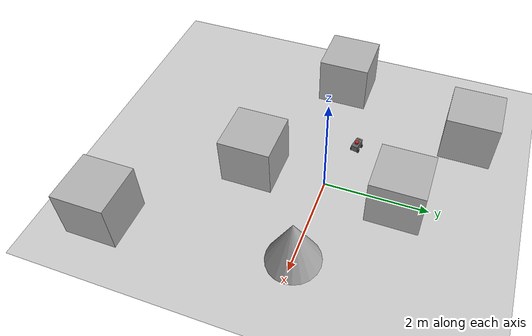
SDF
<sdf version='1.10'>
  <world name='empty'>
    <physics name='1ms' type='ignored'>
      <max_step_size>0.001</max_step_size>
      <real_time_factor>1</real_time_factor>
      <real_time_update_rate>1000</real_time_update_rate>
    </physics>
    <plugin name='gz::sim::systems::Physics' filename='gz-sim-physics-system'/>
    <plugin name='gz::sim::systems::UserCommands' filename='gz-sim-user-commands-system'/>
    <plugin name='gz::sim::systems::SceneBroadcaster' filename='gz-sim-scene-broadcaster-system'/>
    <plugin name='gz::sim::systems::Contact' filename='gz-sim-contact-system'/>
    <plugin name='gz::sim::systems::Sensors' filename='gz-sim-sensors-system'>
      <render_engine>ogre2</render_engine>
    </plugin>
    <plugin name='gz::sim::systems::Imu' filename='gz-sim-imu-system'/>
    <plugin name='gz::sim::systems::NavSat' filename='gz-sim-navsat-system'/>
    <gravity>0 0 -9.8000000000000007</gravity>
    <magnetic_field>5.5644999999999998e-06 2.2875799999999999e-05 -4.2388400000000002e-05</magnetic_field>
    <atmosphere type='adiabatic'/>
    <scene>
      <ambient>0.400000006 0.400000006 0.400000006 1</ambient>
      <background>0.699999988 0.699999988 0.699999988 1</background>
      <shadows>true</shadows>
    </scene>
    <model name='ground_plane'>
      <static>true</static>
      <link name='link'>
        <collision name='collision'>
          <geometry>
            <plane>
              <normal>0 0 1</normal>
              <size>100 100</size>
            </plane>
          </geometry>
          <surface>
            <friction>
              <ode/>
            </friction>
            <bounce/>
            <contact/>
          </surface>
        </collision>
        <visual name='visual'>
          <geometry>
            <plane>
              <normal>0 0 1</normal>
              <size>100 100</size>
            </plane>
          </geometry>
          <material>
            <ambient>0.800000012 0.800000012 0.800000012 1</ambient>
            <diffuse>0.800000012 0.800000012 0.800000012 1</diffuse>
            <specular>0.800000012 0.800000012 0.800000012 1</specular>
          </material>
        </visual>
        <pose>0 0 0 0 0 0</pose>
        <inertial>
          <pose>0 0 0 0 0 0</pose>
          <mass>1</mass>
          <inertia>
            <ixx>1</ixx>
            <ixy>0</ixy>
            <ixz>0</ixz>
            <iyy>1</iyy>
            <iyz>0</iyz>
            <izz>1</izz>
          </inertia>
        </inertial>
        <enable_wind>false</enable_wind>
      </link>
      <pose>0 0 0 0 0 0</pose>
      <self_collide>false</self_collide>
    </model>
    <model name='my_robot'>
      <link name='base_footprint'>
        <inertial>
          <pose>0.0041935483870967748 0 0.095716129032258068 0 0 0</pose>
          <mass>3.1000000000000001</mass>
          <inertia>
            <ixx>0.0081682763268817217</ixx>
            <ixy>0</ixy>
            <ixz>-0.00057569032258064515</ixz>
            <iyy>0.019261260197849461</iyy>
            <iyz>0</iyz>
            <izz>0.01979925053763441</izz>
          </inertia>
        </inertial>
        <collision name='base_footprint_fixed_joint_lump__base_link_collision'>
          <pose>0 0 0.094240000000000004 0 0 0</pose>
          <geometry>
            <box>
              <size>0.23499999999999999 0.13 0.12</size>
            </box>
          </geometry>
          <surface>
            <friction>
              <ode/>
            </friction>
            <bounce/>
            <contact/>
          </surface>
        </collision>
        <collision name='base_footprint_fixed_joint_lump__camera_link_collision_1'>
          <pose>0.13 0 0.14000000000000001 0 0 0</pose>
          <geometry>
            <box>
              <size>0.025999999999999999 0.124 0.029999999999999999</size>
            </box>
          </geometry>
          <surface>
            <contact>
              <ode/>
            </contact>
            <friction>
              <ode/>
            </friction>
            <bounce/>
          </surface>
        </collision>
        <visual name='base_footprint_fixed_joint_lump__base_link_visual'>
          <pose>0 0 0.094240000000000004 0 0 0</pose>
          <geometry>
            <box>
              <size>0.23499999999999999 0.13 0.12</size>
            </box>
          </geometry>
          <material>
            <diffuse>0.37500003 0.37500003 0.37500003 1</diffuse>
            <ambient>0.37500003 0.37500003 0.37500003 1</ambient>
          </material>
        </visual>
        <visual name='base_footprint_fixed_joint_lump__camera_link_visual_1'>
          <pose>0.13 0 0.14000000000000001 0 0 0</pose>
          <geometry>
            <box>
              <size>0.025999999999999999 0.124 0.029999999999999999</size>
            </box>
          </geometry>
          <material>
            <diffuse>0.625 0.625 0.625 1</diffuse>
            <ambient>0.625 0.625 0.625 1</ambient>
          </material>
        </visual>
        <visual name='base_footprint_fixed_joint_lump__lidar_link_visual_2'>
          <pose>0 0 0.16 0 0 0</pose>
          <geometry>
            <cylinder>
              <length>0.059999999999999998</length>
              <radius>0.040000000000000001</radius>
            </cylinder>
          </geometry>
          <material>
            <script>
              <name>Gazebo/Red</name>
              <uri>file://media/materials/scripts/gazebo.material</uri>
            </script>
          </material>
        </visual>
        <sensor name='camera' type='camera'>
          <pose>0.13 0 0.14000000000000001 0 0 0</pose>
          <topic>camera/image_raw</topic>
          <update_rate>20</update_rate>
          <enable_metrics>false</enable_metrics>
          <camera name='__default__'>
            <pose>0 0 0 0 0 0</pose>
            <horizontal_fov>1.3962634</horizontal_fov>
            <image>
              <width>640</width>
              <height>480</height>
              <format>RGB_INT8</format>
              <anti_aliasing>4</anti_aliasing>
            </image>
            <camera_info_topic>camera/camera_info</camera_info_topic>
            <trigger_topic></trigger_topic>
            <triggered>false</triggered>
            <clip>
              <near>0.10000000000000001</near>
              <far>15</far>
            </clip>
            <save enabled='false'>
              <path>__default__</path>
            </save>
            <visibility_mask>4294967295</visibility_mask>
            <noise>
              <type>gaussian</type>
              <mean>0</mean>
              <stddev>0.0070000000000000001</stddev>
            </noise>
            <distortion>
              <k1>0</k1>
              <k2>0</k2>
              <k3>0</k3>
              <p1>0</p1>
              <p2>0</p2>
              <center>0.5 0.5</center>
            </distortion>
            <lens>
              <type>stereographic</type>
              <scale_to_hfov>true</scale_to_hfov>
              <cutoff_angle>1.5707963267948966</cutoff_angle>
              <env_texture_size>256</env_texture_size>
            </lens>
            <optical_frame_id>camera_link_optical</optical_frame_id>
          </camera>
        </sensor>
        <sensor name='gpu_lidar' type='gpu_lidar'>
          <pose>0 0 0.16 0 0 0</pose>
          <topic>scan</topic>
          <update_rate>2</update_rate>
          <enable_metrics>false</enable_metrics>
          <lidar>
            <scan>
              <horizontal>
                <samples>360</samples>
                <resolution>1</resolution>
                <min_angle>-3.1415899999999999</min_angle>
                <max_angle>3.1415899999999999</max_angle>
              </horizontal>
              <vertical>
                <samples>1</samples>
                <min_angle>0</min_angle>
                <max_angle>0</max_angle>
                <resolution>1</resolution>
              </vertical>
            </scan>
            <range>
              <min>0.10000000000000001</min>
              <max>12</max>
              <resolution>0.0050000000000000001</resolution>
            </range>
            <noise>
              <type>gaussian</type>
              <mean>0</mean>
              <stddev>0.01</stddev>
            </noise>
            <visibility_mask>4294967295</visibility_mask>
          </lidar>
        </sensor>
        <pose>0 0 0 0 0 0</pose>
        <enable_wind>false</enable_wind>
      </link>
      <joint name='wheel_fl_joint' type='revolute'>
        <pose>-2.7755575615628914e-17 0 3.4694469519536142e-17 -1.1209022697513058e-42 1.1100878398808028e-16 -2.0194839173657902e-26</pose>
        <parent>base_footprint</parent>
        <child>wheel_fl_link</child>
        <axis>
          <xyz>2.0194839173657902e-26 1 -1.1209022697513058e-42</xyz>
          <limit>
            <lower>-inf</lower>
            <upper>inf</upper>
            <effort>inf</effort>
            <velocity>inf</velocity>
            <stiffness>100000000</stiffness>
            <dissipation>1</dissipation>
          </limit>
          <dynamics>
            <spring_reference>0</spring_reference>
            <spring_stiffness>0</spring_stiffness>
            <damping>0</damping>
            <friction>0</friction>
          </dynamics>
        </axis>
      </joint>
      <link name='wheel_fl_link'>
        <pose>0.077000027509921187 0.076999999747418238 0.037250000820112414 7.8511462742662331e-09 1.3542180370822126 5.2036544556800388e-09</pose>
        <inertial>
          <pose>0 0 0 0 0 0</pose>
          <mass>0.10000000000000001</mass>
          <inertia>
            <ixx>0.0001</ixx>
            <ixy>0</ixy>
            <ixz>0</ixz>
            <iyy>0.0001</iyy>
            <iyz>0</iyz>
            <izz>0.0001</izz>
          </inertia>
        </inertial>
        <collision name='wheel_fl_link_collision'>
          <pose>0 0 0 1.5700000000000001 0 0</pose>
          <geometry>
            <cylinder>
              <length>0.02</length>
              <radius>0.037249999999999998</radius>
            </cylinder>
          </geometry>
          <surface>
            <contact>
              <ode>
                <kp>100000</kp>
                <kd>1</kd>
              </ode>
            </contact>
            <friction>
              <ode>
                <mu>3</mu>
                <mu2>3</mu2>
              </ode>
            </friction>
            <bounce/>
          </surface>
        </collision>
        <visual name='wheel_fl_link_visual'>
          <pose>0 0 0 1.5700000000000001 0 0</pose>
          <geometry>
            <cylinder>
              <length>0.02</length>
              <radius>0.037249999999999998</radius>
            </cylinder>
          </geometry>
          <material>
            <diffuse>0 0 0 1</diffuse>
            <ambient>0 0 0 1</ambient>
          </material>
        </visual>
        <enable_wind>false</enable_wind>
      </link>
      <joint name='wheel_fr_joint' type='revolute'>
        <pose>-6.9388939039072284e-17 4.163336342344337e-17 -2.4286128663675299e-17 -2.5849394142282121e-26 2.2066667159273757e-19 1.1470668650637691e-25</pose>
        <parent>base_footprint</parent>
        <child>wheel_fr_link</child>
        <axis>
          <xyz>-1.1470668650637686e-25 1 -2.5849394142282112e-26</xyz>
          <limit>
            <lower>-inf</lower>
            <upper>inf</upper>
            <effort>inf</effort>
            <velocity>inf</velocity>
            <stiffness>100000000</stiffness>
            <dissipation>1</dissipation>
          </limit>
          <dynamics>
            <spring_reference>0</spring_reference>
            <spring_stiffness>0</spring_stiffness>
            <damping>0</damping>
            <friction>0</friction>
          </dynamics>
        </axis>
      </joint>
      <link name='wheel_fr_link'>
        <pose>0.077000027281070249 -0.077000000188156753 0.037250001049473451 -3.141592653487423 1.1417961157812553 3.1415926512189443</pose>
        <inertial>
          <pose>0 0 0 0 0 0</pose>
          <mass>0.10000000000000001</mass>
          <inertia>
            <ixx>0.0001</ixx>
            <ixy>0</ixy>
            <ixz>0</ixz>
            <iyy>0.0001</iyy>
            <iyz>0</iyz>
            <izz>0.0001</izz>
          </inertia>
        </inertial>
        <collision name='wheel_fr_link_collision'>
          <pose>0 0 0 1.5700000000000001 0 0</pose>
          <geometry>
            <cylinder>
              <length>0.02</length>
              <radius>0.037249999999999998</radius>
            </cylinder>
          </geometry>
          <surface>
            <contact>
              <ode>
                <kp>100000</kp>
                <kd>1</kd>
              </ode>
            </contact>
            <friction>
              <ode>
                <mu>3</mu>
                <mu2>3</mu2>
              </ode>
            </friction>
            <bounce/>
          </surface>
        </collision>
        <visual name='wheel_fr_link_visual'>
          <pose>0 0 0 1.5700000000000001 0 0</pose>
          <geometry>
            <cylinder>
              <length>0.02</length>
              <radius>0.037249999999999998</radius>
            </cylinder>
          </geometry>
          <material>
            <diffuse>0 0 0 1</diffuse>
            <ambient>0 0 0 1</ambient>
          </material>
        </visual>
        <enable_wind>false</enable_wind>
      </link>
      <joint name='wheel_rl_joint' type='revolute'>
        <pose>1.3010426069826053e-17 -1.3877787807814457e-17 1.3877787807814457e-17 -8.0779356694631609e-28 7.2271783724385996e-21 -1.7044444262567269e-25</pose>
        <parent>base_footprint</parent>
        <child>wheel_rl_link</child>
        <axis>
          <xyz>1.7084833940914585e-25 1 -6.1737571177241398e-46</xyz>
          <limit>
            <lower>-inf</lower>
            <upper>inf</upper>
            <effort>inf</effort>
            <velocity>inf</velocity>
            <stiffness>100000000</stiffness>
            <dissipation>1</dissipation>
          </limit>
          <dynamics>
            <spring_reference>0</spring_reference>
            <spring_stiffness>0</spring_stiffness>
            <damping>0</damping>
            <friction>0</friction>
          </dynamics>
        </axis>
      </joint>
      <link name='wheel_rl_link'>
        <pose>-0.076999972351042389 0.077000000128327153 0.037250114326490807 7.7038237588074568e-09 1.3488803404744201 5.0280146434822958e-09</pose>
        <inertial>
          <pose>0 0 0 0 0 0</pose>
          <mass>0.10000000000000001</mass>
          <inertia>
            <ixx>0.0001</ixx>
            <ixy>0</ixy>
            <ixz>0</ixz>
            <iyy>0.0001</iyy>
            <iyz>0</iyz>
            <izz>0.0001</izz>
          </inertia>
        </inertial>
        <collision name='wheel_rl_link_collision'>
          <pose>0 0 0 1.5700000000000001 0 0</pose>
          <geometry>
            <cylinder>
              <length>0.02</length>
              <radius>0.037249999999999998</radius>
            </cylinder>
          </geometry>
          <surface>
            <contact>
              <ode>
                <kp>100000</kp>
                <kd>1</kd>
              </ode>
            </contact>
            <friction>
              <ode>
                <mu>3</mu>
                <mu2>3</mu2>
              </ode>
            </friction>
            <bounce/>
          </surface>
        </collision>
        <visual name='wheel_rl_link_visual'>
          <pose>0 0 0 1.5700000000000001 0 0</pose>
          <geometry>
            <cylinder>
              <length>0.02</length>
              <radius>0.037249999999999998</radius>
            </cylinder>
          </geometry>
          <material>
            <diffuse>0 0 0 1</diffuse>
            <ambient>0 0 0 1</ambient>
          </material>
        </visual>
        <enable_wind>false</enable_wind>
      </link>
      <joint name='wheel_rr_joint' type='revolute'>
        <pose>-2.7755575615628914e-17 -2.7755575615628914e-17 -6.9388939039072284e-18 2.0336808519777635e-44 2.2478347801707842e-19 1.809457589959748e-25</pose>
        <parent>base_footprint</parent>
        <child>wheel_rr_link</child>
        <axis>
          <xyz>-1.809457589959748e-25 1 2.0336808519777635e-44</xyz>
          <limit>
            <lower>-inf</lower>
            <upper>inf</upper>
            <effort>inf</effort>
            <velocity>inf</velocity>
            <stiffness>100000000</stiffness>
            <dissipation>1</dissipation>
          </limit>
          <dynamics>
            <spring_reference>0</spring_reference>
            <spring_stiffness>0</spring_stiffness>
            <damping>0</damping>
            <friction>0</friction>
          </dynamics>
        </axis>
      </joint>
      <link name='wheel_rr_link'>
        <pose>-0.076999972583406295 -0.076999999807269515 0.037250115177096546 -3.1415926535065055 1.1489173095840197 3.1415926511790206</pose>
        <inertial>
          <pose>0 0 0 0 0 0</pose>
          <mass>0.10000000000000001</mass>
          <inertia>
            <ixx>0.0001</ixx>
            <ixy>0</ixy>
            <ixz>0</ixz>
            <iyy>0.0001</iyy>
            <iyz>0</iyz>
            <izz>0.0001</izz>
          </inertia>
        </inertial>
        <collision name='wheel_rr_link_collision'>
          <pose>0 0 0 1.5700000000000001 0 0</pose>
          <geometry>
            <cylinder>
              <length>0.02</length>
              <radius>0.037249999999999998</radius>
            </cylinder>
          </geometry>
          <surface>
            <contact>
              <ode>
                <kp>100000</kp>
                <kd>1</kd>
              </ode>
            </contact>
            <friction>
              <ode>
                <mu>3</mu>
                <mu2>3</mu2>
              </ode>
            </friction>
            <bounce/>
          </surface>
        </collision>
        <visual name='wheel_rr_link_visual'>
          <pose>0 0 0 1.5700000000000001 0 0</pose>
          <geometry>
            <cylinder>
              <length>0.02</length>
              <radius>0.037249999999999998</radius>
            </cylinder>
          </geometry>
          <material>
            <diffuse>0 0 0 1</diffuse>
            <ambient>0 0 0 1</ambient>
          </material>
        </visual>
        <enable_wind>false</enable_wind>
      </link>
      <plugin name='gz::sim::systems::DiffDrive' filename='gz-sim-diff-drive-system'>
        <left_joint>wheel_fl_joint</left_joint>
        <left_joint>wheel_rl_joint</left_joint>
        <right_joint>wheel_fr_joint</right_joint>
        <right_joint>wheel_rr_joint</right_joint>
        <wheel_separation>0.145</wheel_separation>
        <wheel_diameter>0.0745</wheel_diameter>
        <command_topic>cmd_vel</command_topic>
        <odometry_topic>odom</odometry_topic>
        <odometry_frame>odom</odometry_frame>
        <robot_base_frame>base_footprint</robot_base_frame>
        <frame_id>odom</frame_id>
        <child_frame_id>base_footprint</child_frame_id>
        <update_rate>50</update_rate>
        <publish_odom>true</publish_odom>
        <publish_wheel_tf>false</publish_wheel_tf>
        <publish_tf>true</publish_tf>
      </plugin>
      <plugin name='gz::sim::systems::JointStatePublisher' filename='gz-sim-joint-state-publisher-system'>
        <joint_name>wheel_fl_joint</joint_name>
        <joint_name>wheel_fr_joint</joint_name>
        <joint_name>wheel_rl_joint</joint_name>
        <joint_name>wheel_rr_joint</joint_name>
      </plugin>
      <frame name='camera_optical_joint' attached_to='camera_link'>
        <pose>0 0 0 -1.5707963267948959 -5.5511151231257827e-17 -1.5707963267948959</pose>
      </frame>
      <frame name='camera_link_optical' attached_to='camera_optical_joint'>
        <pose>0 0 0 0 0 0</pose>
      </frame>
      <frame name='base_camera_joint' attached_to='base_link'>
        <pose>0.13 0 0.14000000000000001 0 0 0</pose>
      </frame>
      <frame name='camera_link' attached_to='base_camera_joint'>
        <pose>0 0 0 0 0 0</pose>
      </frame>
      <frame name='base_to_lidar' attached_to='base_link'>
        <pose>0 0 0.16 0 0 0</pose>
      </frame>
      <frame name='lidar_link' attached_to='base_to_lidar'>
        <pose>0 0 0 0 0 0</pose>
      </frame>
      <frame name='base_footprint_to_base_link' attached_to='base_footprint'>
        <pose>0 0 0 0 0 0</pose>
      </frame>
      <frame name='base_link' attached_to='base_footprint_to_base_link'>
        <pose>0 0 0 0 0 0</pose>
      </frame>
      <pose>-1.0852788389393537 0.32561791256366129 2.4391345761076411e-06 -9.0901141867827669e-06 -7.7818515136735845e-07 2.9440474466633009</pose>
      <static>false</static>
      <self_collide>false</self_collide>
    </model>
    <model name='box'>
      <pose>0.063487052415454492 1.4088901404750347 0.49999999961383335 2.2173168376473367e-21 -7.874254222518039e-21 -1.0220815815193421e-21</pose>
      <link name='box_link'>
        <inertial>
          <inertia>
            <ixx>0.16666</ixx>
            <ixy>0</ixy>
            <ixz>0</ixz>
            <iyy>0.16666</iyy>
            <iyz>0</iyz>
            <izz>0.16666</izz>
          </inertia>
          <mass>1</mass>
          <pose>0 0 0 0 0 0</pose>
        </inertial>
        <collision name='box_collision'>
          <geometry>
            <box>
              <size>1 1 1</size>
            </box>
          </geometry>
          <surface>
            <friction>
              <ode/>
            </friction>
            <bounce/>
            <contact/>
          </surface>
        </collision>
        <visual name='box_visual'>
          <geometry>
            <box>
              <size>1 1 1</size>
            </box>
          </geometry>
          <material>
            <ambient>0.300000012 0.300000012 0.300000012 1</ambient>
            <diffuse>0.699999988 0.699999988 0.699999988 1</diffuse>
            <specular>1 1 1 1</specular>
          </material>
        </visual>
        <pose>0 0 0 0 0 0</pose>
        <enable_wind>false</enable_wind>
      </link>
      <static>false</static>
      <self_collide>false</self_collide>
    </model>
    <model name='cone'>
      <pose>1.751710207839807 0.0041781990334079444 0.49999999989482141 1.2283509468267468e-11 -9.8470640147221264e-10 8.0488670669582235e-17</pose>
      <link name='cone_link'>
        <inertial>
          <inertia>
            <ixx>0.074999999999999997</ixx>
            <ixy>0</ixy>
            <ixz>0</ixz>
            <iyy>0.074999999999999997</iyy>
            <iyz>0</iyz>
            <izz>0.074999999999999997</izz>
          </inertia>
          <mass>1</mass>
          <pose>0 0 0 0 0 0</pose>
        </inertial>
        <collision name='cone_collision'>
          <geometry>
            <cone>
              <radius>0.5</radius>
              <length>1</length>
            </cone>
          </geometry>
          <surface>
            <friction>
              <ode/>
            </friction>
            <bounce/>
            <contact/>
          </surface>
        </collision>
        <visual name='cone_visual'>
          <geometry>
            <cone>
              <radius>0.5</radius>
              <length>1</length>
            </cone>
          </geometry>
          <material>
            <ambient>0.300000012 0.300000012 0.300000012 1</ambient>
            <diffuse>0.699999988 0.699999988 0.699999988 1</diffuse>
            <specular>1 1 1 1</specular>
          </material>
        </visual>
        <pose>0 0 0 0 0 0</pose>
        <enable_wind>false</enable_wind>
      </link>
      <static>false</static>
      <self_collide>false</self_collide>
    </model>
    <model name='box_0'>
      <pose>0.046418805450898937 -1.3879084659294745 0.49999999961383335 2.2173168376473367e-21 -7.874254222518039e-21 -1.0220815815193421e-21</pose>
      <link name='box_link'>
        <inertial>
          <inertia>
            <ixx>0.16666</ixx>
            <ixy>0</ixy>
            <ixz>0</ixz>
            <iyy>0.16666</iyy>
            <iyz>0</iyz>
            <izz>0.16666</izz>
          </inertia>
          <mass>1</mass>
          <pose>0 0 0 0 0 0</pose>
        </inertial>
        <collision name='box_collision'>
          <geometry>
            <box>
              <size>1 1 1</size>
            </box>
          </geometry>
          <surface>
            <friction>
              <ode/>
            </friction>
            <bounce/>
            <contact/>
          </surface>
        </collision>
        <visual name='box_visual'>
          <geometry>
            <box>
              <size>1 1 1</size>
            </box>
          </geometry>
          <material>
            <ambient>0.300000012 0.300000012 0.300000012 1</ambient>
            <diffuse>0.699999988 0.699999988 0.699999988 1</diffuse>
            <specular>1 1 1 1</specular>
          </material>
        </visual>
        <pose>0 0 0 0 0 0</pose>
        <enable_wind>false</enable_wind>
      </link>
      <static>false</static>
      <self_collide>false</self_collide>
    </model>
    <model name='box_1'>
      <pose>-1.9234735221427828 2.391466343172195 0.49999999980497606 1.0048033485058014e-21 -2.4640853465547739e-21 -3.9210766489770922e-22</pose>
      <link name='box_link'>
        <inertial>
          <inertia>
            <ixx>0.16666</ixx>
            <ixy>0</ixy>
            <ixz>0</ixz>
            <iyy>0.16666</iyy>
            <iyz>0</iyz>
            <izz>0.16666</izz>
          </inertia>
          <mass>1</mass>
          <pose>0 0 0 0 0 0</pose>
        </inertial>
        <collision name='box_collision'>
          <geometry>
            <box>
              <size>1 1 1</size>
            </box>
          </geometry>
          <surface>
            <friction>
              <ode/>
            </friction>
            <bounce/>
            <contact/>
          </surface>
        </collision>
        <visual name='box_visual'>
          <geometry>
            <box>
              <size>1 1 1</size>
            </box>
          </geometry>
          <material>
            <ambient>0.300000012 0.300000012 0.300000012 1</ambient>
            <diffuse>0.699999988 0.699999988 0.699999988 1</diffuse>
            <specular>1 1 1 1</specular>
          </material>
        </visual>
        <pose>0 0 0 0 0 0</pose>
        <enable_wind>false</enable_wind>
      </link>
      <static>false</static>
      <self_collide>false</self_collide>
    </model>
    <model name='box_2'>
      <pose>-2.7467044450983589 -0.34011748740916747 0.49999999980497606 1.0048033485058014e-21 -2.4640853465547739e-21 -3.9210766489770922e-22</pose>
      <link name='box_link'>
        <inertial>
          <inertia>
            <ixx>0.16666</ixx>
            <ixy>0</ixy>
            <ixz>0</ixz>
            <iyy>0.16666</iyy>
            <iyz>0</iyz>
            <izz>0.16666</izz>
          </inertia>
          <mass>1</mass>
          <pose>0 0 0 0 0 0</pose>
        </inertial>
        <collision name='box_collision'>
          <geometry>
            <box>
              <size>1 1 1</size>
            </box>
          </geometry>
          <surface>
            <friction>
              <ode/>
            </friction>
            <bounce/>
            <contact/>
          </surface>
        </collision>
        <visual name='box_visual'>
          <geometry>
            <box>
              <size>1 1 1</size>
            </box>
          </geometry>
          <material>
            <ambient>0.300000012 0.300000012 0.300000012 1</ambient>
            <diffuse>0.699999988 0.699999988 0.699999988 1</diffuse>
            <specular>1 1 1 1</specular>
          </material>
        </visual>
        <pose>0 0 0 0 0 0</pose>
        <enable_wind>false</enable_wind>
      </link>
      <static>false</static>
      <self_collide>false</self_collide>
    </model>
    <model name='box_3'>
      <pose>2.0719250647523726 -3.4763490958118304 0.49999999980497606 1.0048033485058014e-21 -2.4640853465547739e-21 -3.9210766489770922e-22</pose>
      <link name='box_link'>
        <inertial>
          <inertia>
            <ixx>0.16666</ixx>
            <ixy>0</ixy>
            <ixz>0</ixz>
            <iyy>0.16666</iyy>
            <iyz>0</iyz>
            <izz>0.16666</izz>
          </inertia>
          <mass>1</mass>
          <pose>0 0 0 0 0 0</pose>
        </inertial>
        <collision name='box_collision'>
          <geometry>
            <box>
              <size>1 1 1</size>
            </box>
          </geometry>
          <surface>
            <friction>
              <ode/>
            </friction>
            <bounce/>
            <contact/>
          </surface>
        </collision>
        <visual name='box_visual'>
          <geometry>
            <box>
              <size>1 1 1</size>
            </box>
          </geometry>
          <material>
            <ambient>0.300000012 0.300000012 0.300000012 1</ambient>
            <diffuse>0.699999988 0.699999988 0.699999988 1</diffuse>
            <specular>1 1 1 1</specular>
          </material>
        </visual>
        <pose>0 0 0 0 0 0</pose>
        <enable_wind>false</enable_wind>
      </link>
      <static>false</static>
      <self_collide>false</self_collide>
    </model>
    <light name='sun' type='directional'>
      <pose>0 0 10 0 0 0</pose>
      <cast_shadows>true</cast_shadows>
      <intensity>1</intensity>
      <direction>-0.5 0.10000000000000001 -0.90000000000000002</direction>
      <diffuse>0.800000012 0.800000012 0.800000012 1</diffuse>
      <specular>0.200000003 0.200000003 0.200000003 1</specular>
      <attenuation>
        <range>1000</range>
        <linear>0.01</linear>
        <constant>0.90000000000000002</constant>
        <quadratic>0.001</quadratic>
      </attenuation>
      <spot>
        <inner_angle>0</inner_angle>
        <outer_angle>0</outer_angle>
        <falloff>0</falloff>
      </spot>
    </light>
  </world>
</sdf>
